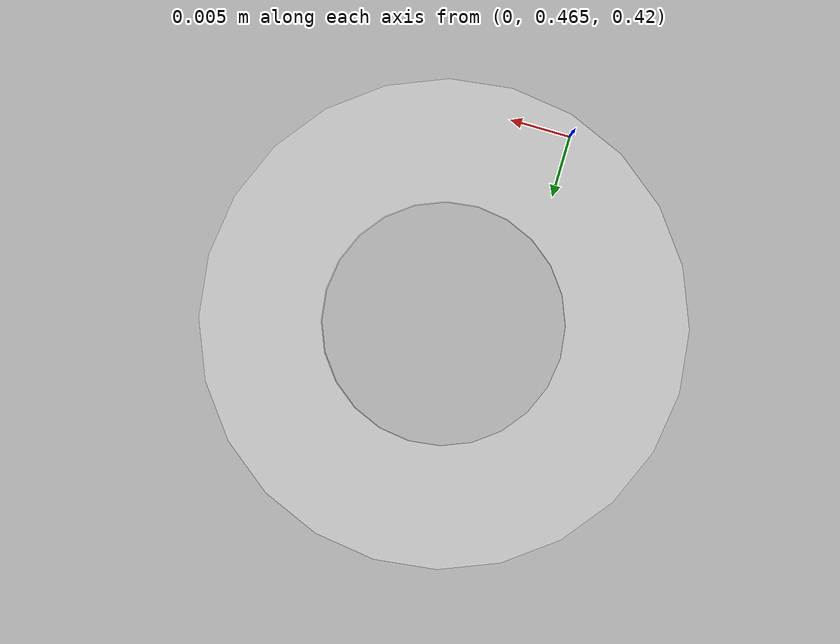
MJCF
<mujoco model="original-15">
  <default>
    <default class="visual">
      <geom group="2" type="mesh" contype="0" conaffinity="0"/>
    </default>
    <default class="collision">
      <geom group="3" type="mesh"/>
    </default>
  </default>
  <asset>
    <material name="material_0_0" specular="0.06666666666666667" shininess="0.03" rgba="0.8627450980392157 0.8627450980392157 0.8627450980392157 0.5019608"/>
    <mesh file="original-15.obj"/>
  </asset>
  <worldbody>
    <body name="original-15">
      <geom material="material_0_0" mesh="original-15" class="visual"/>
      <geom mesh="original-15" class="collision"/>
    </body>
  </worldbody>
</mujoco>
